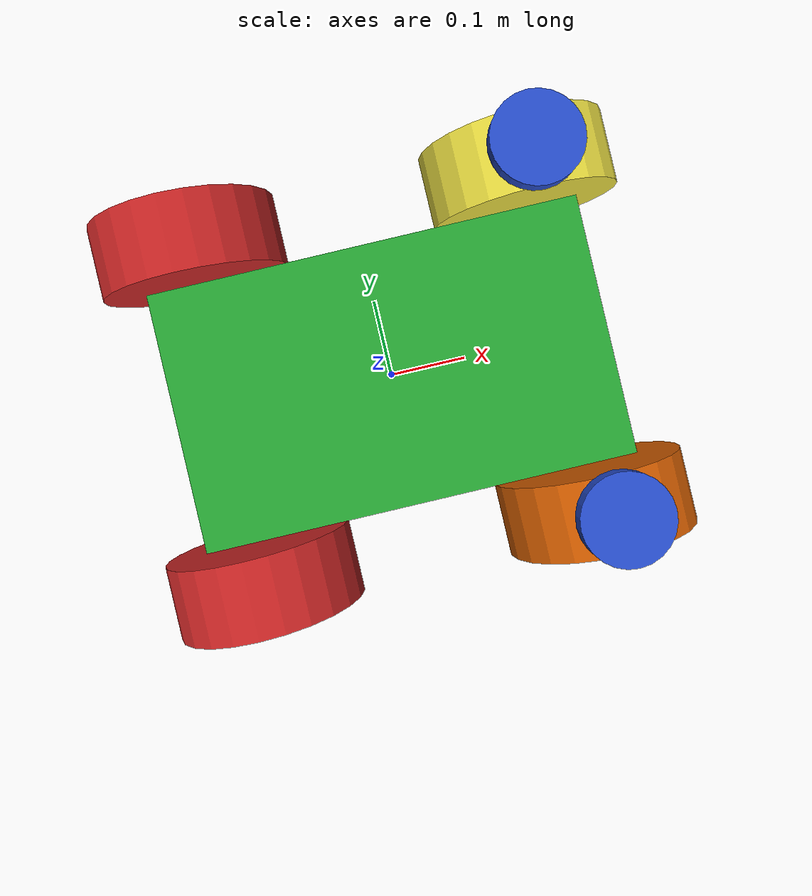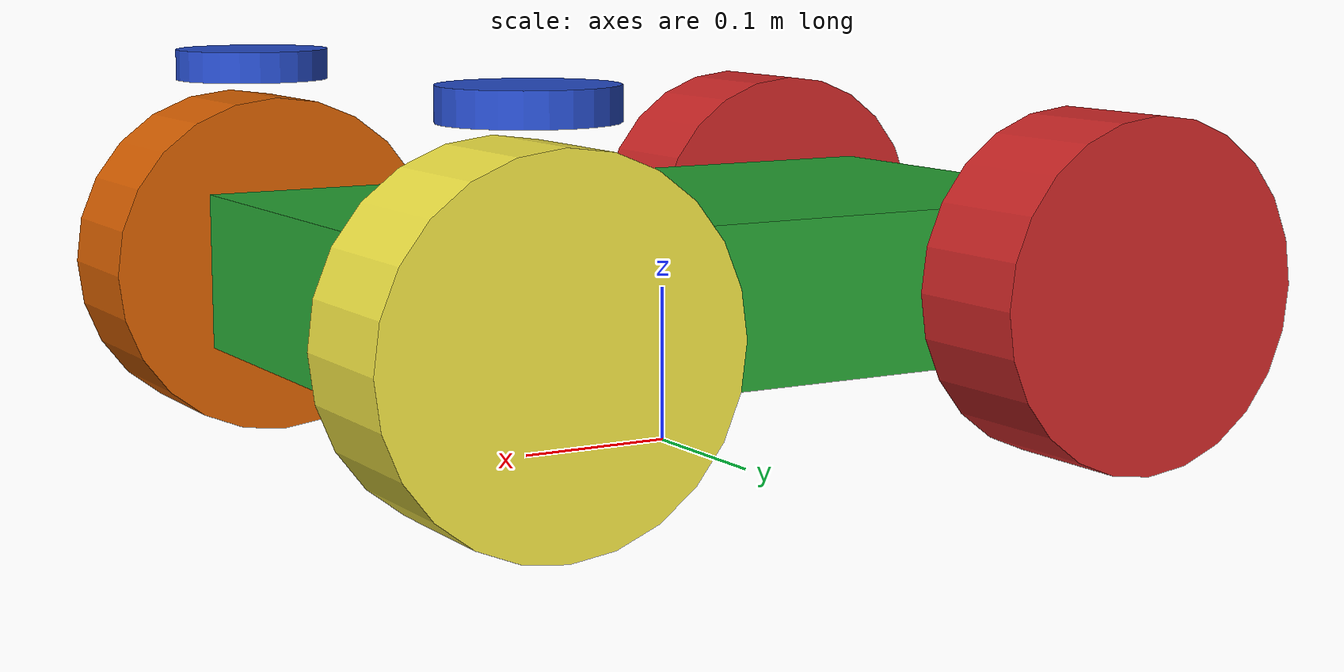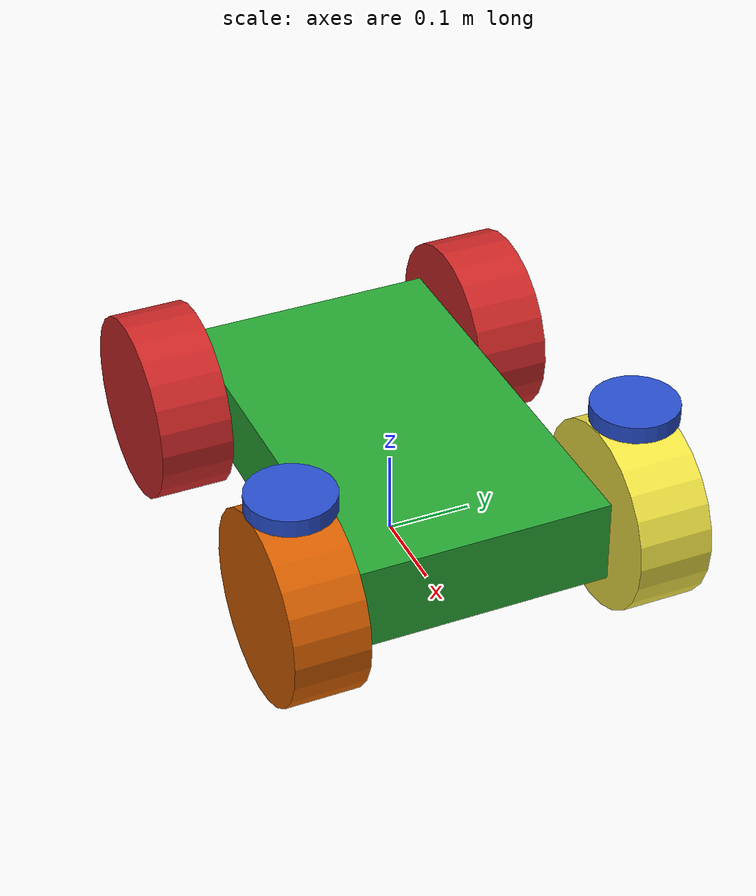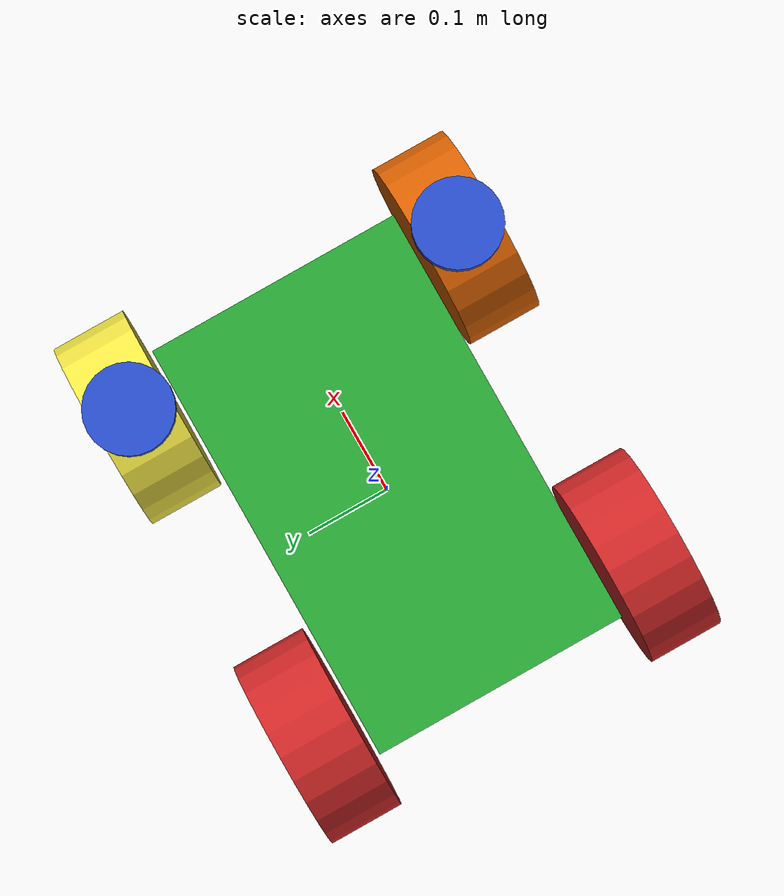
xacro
<?xml version="1.0"?>
<robot name="robot" xmlns:xacro="http://www.ros.org/wiki/xacro">
<!--
Robot model taken from http://wiki.ros.org/pr2_mechanism/Tutorials/SImple%20URDF-Controller%20Example
-->
  <xacro:include filename="$(find steer_drive_controller)/test/wheel.xacro"/>

  <xacro:property name="deg_to_rad" value="0.01745329251994329577"/>

  <!-- Constants for robot dimensions -->
  <xacro:property name="length" value="0.5" />
  <xacro:property name="width" value="0.3" />
  <xacro:property name="wheel_radius" value="0.11" /> <!-- Link 1 -->
  <xacro:property name="thickness" value="0.086" /> <!-- Link 2 -->
  <xacro:property name="axel_offset" value="0.05" /> <!-- Space btw top of beam and the each joint -->
  <xacro:property name="steer_offset" value="0.02" /> <!-- Link 1 -->

  <!-- Links: inertial,visual,collision -->
  <link name="base_link">
    <inertial>
      <!-- origin is relative -->
      <origin xyz="0 0 0" rpy="0 0 0"/>
      <mass value="5"/>
      <inertia ixx="5" ixy="0" ixz="0" iyy="5" iyz="0" izz="5"/>
    </inertial>
    <visual>
      <geometry>
        <box size="${length} ${width} 0.1"/>
      </geometry>
    </visual>
    <collision>
      <!-- origin is relative -->
      <origin xyz="0 0 0"/>
      <geometry>
        <box size="${length} ${width} 0.1"/>
      </geometry>
    </collision>
  </link>

  <link name="base_footprint">
    <visual>
      <geometry>
        <sphere radius="0.01"/>
      </geometry>
    </visual>
    <collision>
      <origin xyz="0 0 0"/>
      <geometry>
        <sphere radius="0.00000001"/>
      </geometry>
    </collision>
  </link>
  <joint name="base_footprint_joint" type="fixed">
    <origin xyz="0 0 ${wheel_radius}" rpy="0 0 0"/>
    <child link="base_link"/>
    <parent link="base_footprint"/>
  </joint>

  <!-- Wheels -->
  <front_wheel name="front_right" parent="base" radius="${wheel_radius}" thickness="${thickness}"
      length="${length}" width="${width}" axel_offset="${axel_offset}" right_left="1" steer_height="${wheel_radius+steer_offset}">
    <origin xyz="${length/2-axel_offset} ${width/2+axel_offset} 0" rpy="${-90 * deg_to_rad} 0 0"/>
  </front_wheel>
  <front_wheel name="front_left" parent="base" radius="${wheel_radius}" thickness="${thickness}"
      length="${length}" width="${width}" axel_offset="${axel_offset}" right_left="-1" steer_height="${wheel_radius+steer_offset}">
    <origin xyz="${length/2-axel_offset} ${-width/2-axel_offset} 0" rpy="${-90 * deg_to_rad} 0 0"/>
  </front_wheel>
  <rear_wheel name="rear_right" parent="base" radius="${wheel_radius}" thickness="${thickness}">
    <origin xyz="${-length/2+axel_offset} ${width/2+axel_offset} 0" rpy="${-90 * deg_to_rad} 0 0"/>
  </rear_wheel>
  <rear_wheel name="rear_left" parent="base" radius="${wheel_radius}" thickness="${thickness}">
    <origin xyz="${-length/2+axel_offset} ${-width/2-axel_offset} 0" rpy="${-90 * deg_to_rad} 0 0"/>
  </rear_wheel>

  <!-- Colour -->
  <gazebo reference="base_link">
    <material>Gazebo/Green</material>
  </gazebo>

  <gazebo reference="base_footprint">
    <material>Gazebo/Purple</material>
  </gazebo>

</robot>

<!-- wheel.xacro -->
<robot xmlns:xacro="http://www.ros.org/wiki/xacro">
  <xacro:property name="steer_radius" value="0.05" /> <!-- Link 1 -->
  <xacro:property name="steer_thickness" value="0.02" /> <!-- Link 1 -->
  <xacro:property name="steer_effort"   value="10.0"/>
  <xacro:property name="steer_velocity" value="5.0"/>

  <macro name="front_wheel" params="name parent radius thickness length width axel_offset right_left steer_height *origin">
    <link name="${name}_steer_link">
      <inertial>
        <origin xyz="0 0 0" rpy="0 0 0"/>
        <mass value="1"/>
        <inertia ixx="0.2" ixy="0" ixz="0" iyy="0.2" iyz="0" izz="0.2"/>
      </inertial>
      <visual>
        <origin xyz="0 0 0" rpy="0 0 0"/>
        <geometry>
          <cylinder radius="${steer_radius}" length="${steer_thickness}"/>
        </geometry>
      </visual>
      <collision>
        <origin xyz="0 0 0" rpy="0 0 0"/>
        <geometry>
          <cylinder radius="${steer_radius}" length="${steer_thickness}"/>
        </geometry>
      </collision>
    </link>

    <joint name="${name}_steer_joint" type="revolute">
      <parent link="${parent}_link"/>
      <child link="${name}_steer_link"/>
      <origin xyz="${length/2-axel_offset} ${right_left*(width/2+axel_offset)} ${steer_height}" rpy="0 0 0"/>
      <!--insert_block name="origin"/-->
      <axis xyz="0 0 1"/>
      <limit effort="${steer_effort}"
             lower="${-180.0 * deg_to_rad}" upper="${180.0 * deg_to_rad}"
             velocity="${steer_velocity}"/>
     </joint>

    <link name="${name}_wheel_link">
      <inertial>
        <origin xyz="0 0 0" rpy="0 0 0"/>
        <mass value="1"/>
        <inertia ixx="0.2" ixy="0" ixz="0" iyy="0.2" iyz="0" izz="0.2"/>
      </inertial>
      <visual>
        <origin xyz="0 0 0" rpy="0 0 0"/>
        <geometry>
          <cylinder radius="${wheel_radius}" length="${thickness}"/>
        </geometry>
      </visual>
      <collision>
        <origin xyz="0 0 0" rpy="0 0 0"/>
        <geometry>
          <cylinder radius="${wheel_radius}" length="${thickness}"/>
        </geometry>
      </collision>
    </link>

    <joint name="${name}_joint" type="continuous">
      <parent link="${name}_steer_link"/>
      <child link="${name}_wheel_link"/>
      <origin xyz="0 0 ${-steer_height}" rpy="${-90 * deg_to_rad} 0 0"/>
      <axis xyz="0 0 1"/>
    </joint>

    <!-- Transmission is important to link the joints and the controller -->
    <transmission name="${name}_joint_trans" type="SimpleTransmission">
      <actuator name="${name}_joint_motor"/>
      <joint name="${name}_joint"/>
      <mechanicalReduction>1</mechanicalReduction>
      <motorTorqueConstant>1</motorTorqueConstant>
    </transmission>

    <gazebo reference="${name}_steer_link">
      <material>Gazebo/Blue</material>
    </gazebo>
    <gazebo reference="${name}_link">
      <material>Gazebo/Red</material>
    </gazebo>
  </macro>

  <macro name="rear_wheel" params="name parent radius thickness *origin">
    <link name="${name}_link">
      <inertial>
        <origin xyz="0 0 0" rpy="0 0 0"/>
        <mass value="1"/>
        <inertia ixx="0.2" ixy="0" ixz="0" iyy="0.2" iyz="0" izz="0.2"/>
      </inertial>
      <visual>
        <origin xyz="0 0 0" rpy="0 0 0"/>
        <geometry>
          <cylinder radius="${wheel_radius}" length="${thickness}"/>
        </geometry>
      </visual>
      <collision>
        <origin xyz="0 0 0" rpy="0 0 0"/>
        <geometry>
          <cylinder radius="${wheel_radius}" length="${thickness}"/>
        </geometry>
      </collision>
    </link>

    <joint name="${name}_joint" type="continuous">
      <parent link="${parent}_link"/>
      <child link="${name}_link"/>
      <insert_block name="origin"/>
      <axis xyz="0 0 1"/>
    </joint>

    <!-- Transmission is important to link the joints and the controller -->
    <transmission name="${name}_joint_trans" type="SimpleTransmission">
      <actuator name="${name}_joint_motor"/>
      <joint name="${name}_joint"/>
      <mechanicalReduction>1</mechanicalReduction>
      <motorTorqueConstant>1</motorTorqueConstant>
    </transmission>

    <gazebo reference="${name}_link">
      <material>Gazebo/Red</material>
    </gazebo>
  </macro>
</robot>
